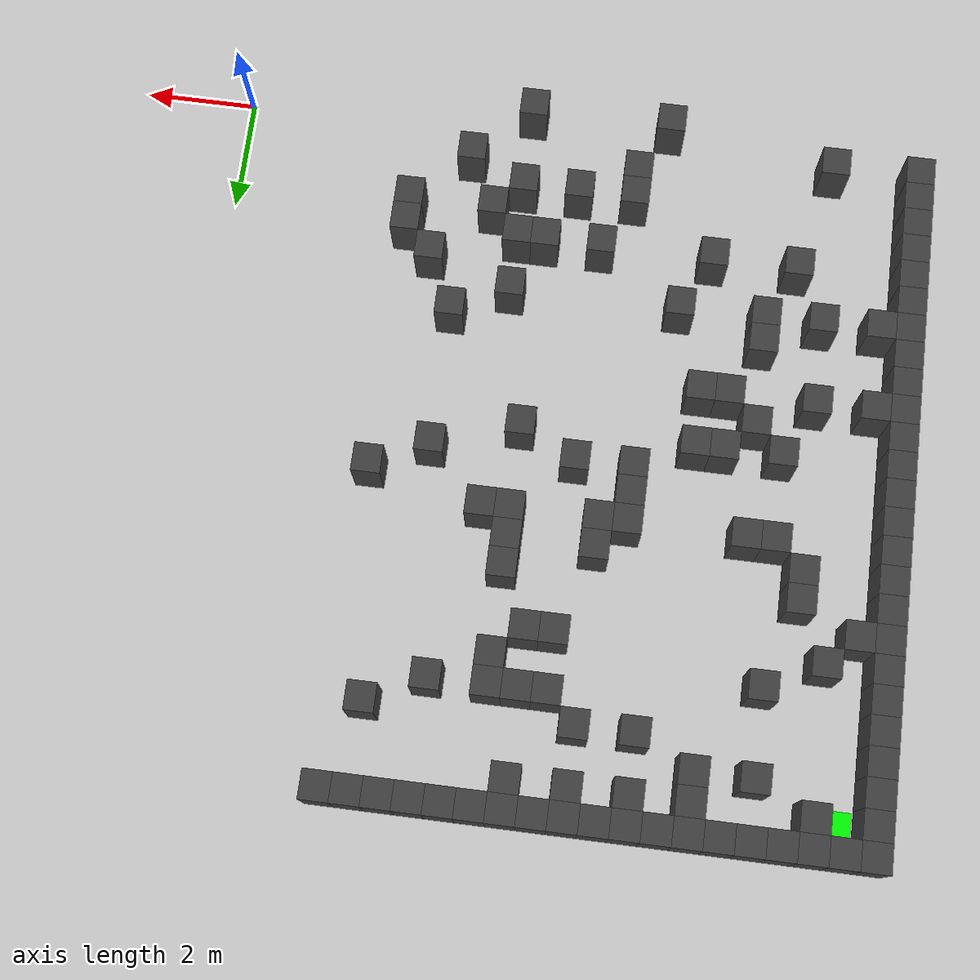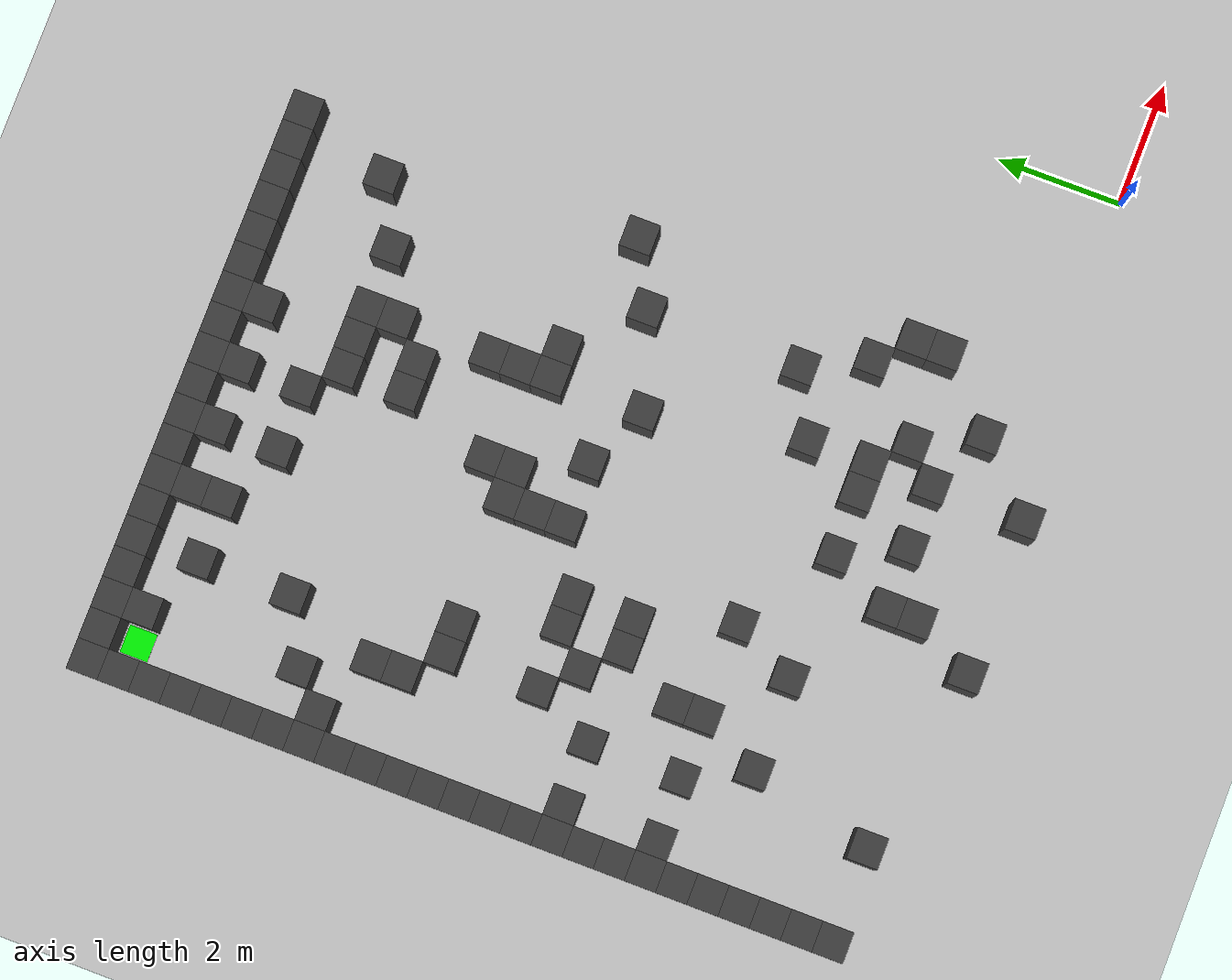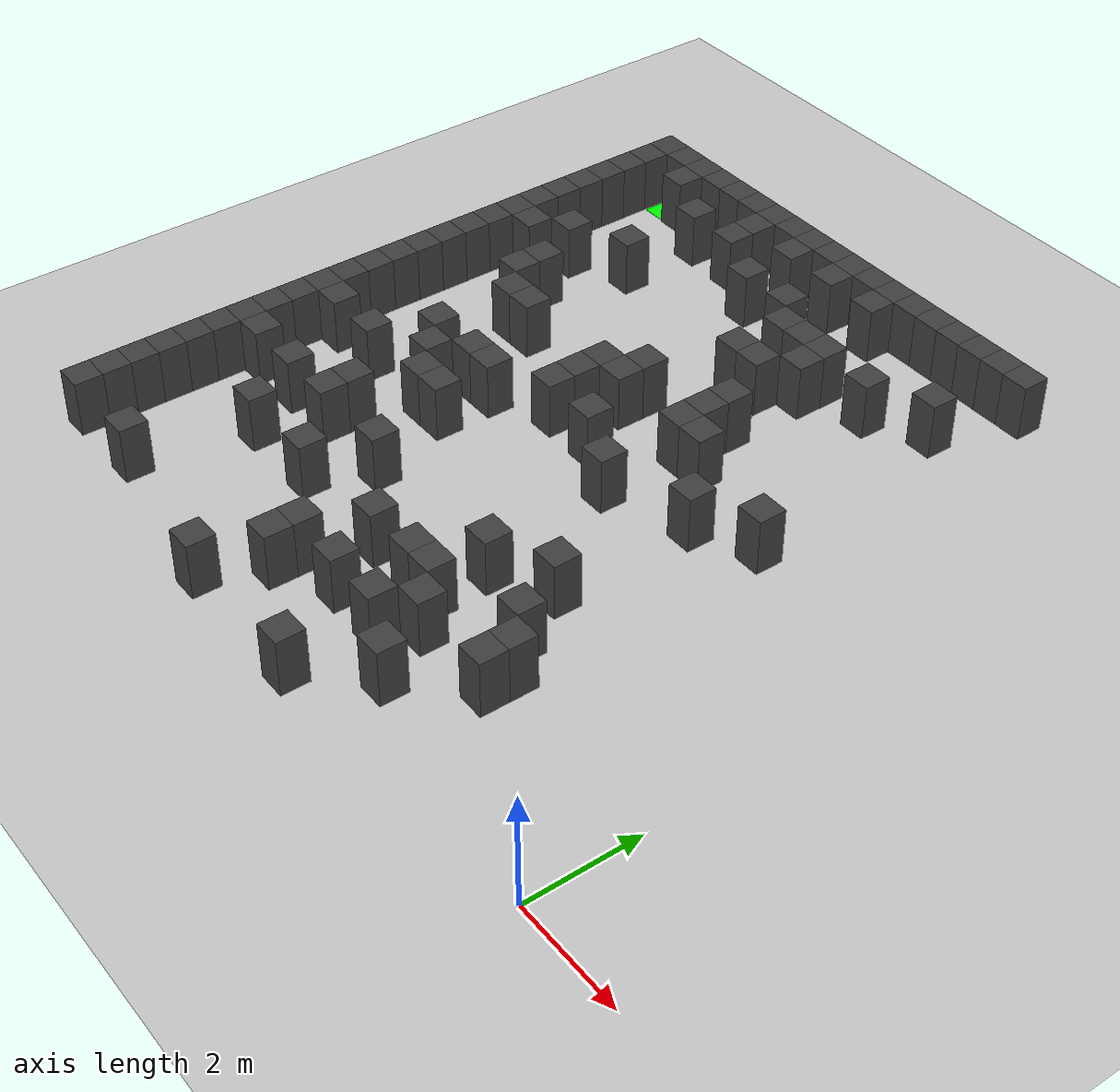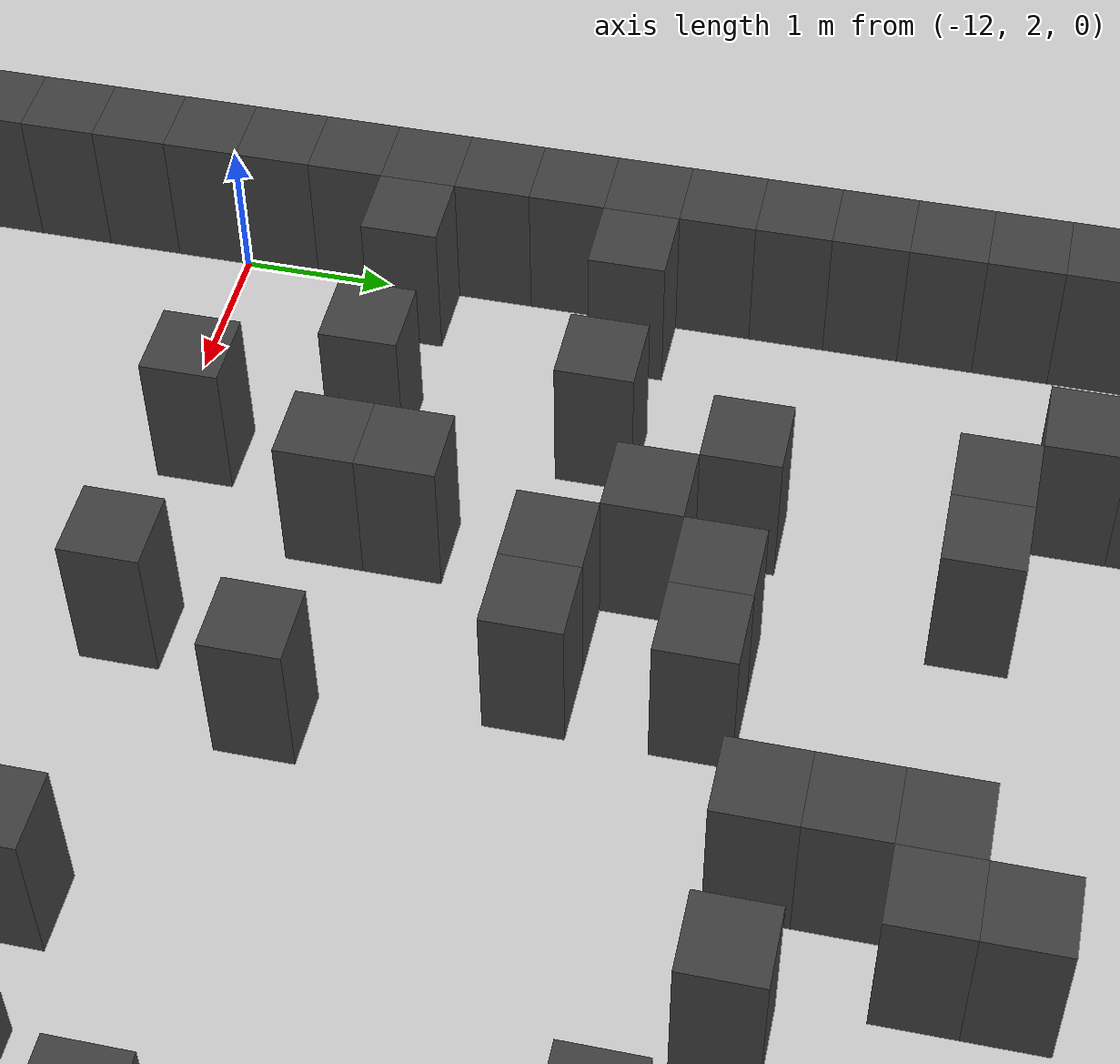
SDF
<sdf version="1.7">
 <world name="map_3158">
  <model name="ground_plane">
   <static>true</static>
   <link name="link">
    <collision name="collision">
     <geometry><plane><normal>0 0 1</normal><size>200 200</size></plane></geometry>
    </collision>
    <visual name="visual">
     <geometry><plane><normal>0 0 1</normal><size>200 200</size></plane></geometry>
     <material><ambient>0.8 0.8 0.8 1</ambient><diffuse>0.8 0.8 0.8 1</diffuse></material>
    </visual>
   </link>
  </model>
  <model name="maze_environment">
   <static>true</static>
   <link name="wall_0">
    <pose>-12.250 12.250 0.500 0 0 0</pose>
    <collision name="col"><geometry><box><size>0.5 0.5 1.0</size></box></geometry></collision>
    <visual name="vis">
     <geometry><box><size>0.5 0.5 1.0</size></box></geometry>
     <material><ambient>0.15 0.15 0.15 1</ambient><diffuse>0.25 0.25 0.25 1</diffuse></material>
    </visual>
   </link>
   <link name="wall_1">
    <pose>-11.750 12.250 0.500 0 0 0</pose>
    <collision name="col"><geometry><box><size>0.5 0.5 1.0</size></box></geometry></collision>
    <visual name="vis">
     <geometry><box><size>0.5 0.5 1.0</size></box></geometry>
     <material><ambient>0.15 0.15 0.15 1</ambient><diffuse>0.25 0.25 0.25 1</diffuse></material>
    </visual>
   </link>
   <link name="wall_2">
    <pose>-11.250 12.250 0.500 0 0 0</pose>
    <collision name="col"><geometry><box><size>0.5 0.5 1.0</size></box></geometry></collision>
    <visual name="vis">
     <geometry><box><size>0.5 0.5 1.0</size></box></geometry>
     <material><ambient>0.15 0.15 0.15 1</ambient><diffuse>0.25 0.25 0.25 1</diffuse></material>
    </visual>
   </link>
   <link name="wall_3">
    <pose>-10.750 12.250 0.500 0 0 0</pose>
    <collision name="col"><geometry><box><size>0.5 0.5 1.0</size></box></geometry></collision>
    <visual name="vis">
     <geometry><box><size>0.5 0.5 1.0</size></box></geometry>
     <material><ambient>0.15 0.15 0.15 1</ambient><diffuse>0.25 0.25 0.25 1</diffuse></material>
    </visual>
   </link>
   <link name="wall_4">
    <pose>-10.250 12.250 0.500 0 0 0</pose>
    <collision name="col"><geometry><box><size>0.5 0.5 1.0</size></box></geometry></collision>
    <visual name="vis">
     <geometry><box><size>0.5 0.5 1.0</size></box></geometry>
     <material><ambient>0.15 0.15 0.15 1</ambient><diffuse>0.25 0.25 0.25 1</diffuse></material>
    </visual>
   </link>
   <link name="wall_5">
    <pose>-9.750 12.250 0.500 0 0 0</pose>
    <collision name="col"><geometry><box><size>0.5 0.5 1.0</size></box></geometry></collision>
    <visual name="vis">
     <geometry><box><size>0.5 0.5 1.0</size></box></geometry>
     <material><ambient>0.15 0.15 0.15 1</ambient><diffuse>0.25 0.25 0.25 1</diffuse></material>
    </visual>
   </link>
   <link name="wall_6">
    <pose>-9.250 12.250 0.500 0 0 0</pose>
    <collision name="col"><geometry><box><size>0.5 0.5 1.0</size></box></geometry></collision>
    <visual name="vis">
     <geometry><box><size>0.5 0.5 1.0</size></box></geometry>
     <material><ambient>0.15 0.15 0.15 1</ambient><diffuse>0.25 0.25 0.25 1</diffuse></material>
    </visual>
   </link>
   <link name="wall_7">
    <pose>-8.750 12.250 0.500 0 0 0</pose>
    <collision name="col"><geometry><box><size>0.5 0.5 1.0</size></box></geometry></collision>
    <visual name="vis">
     <geometry><box><size>0.5 0.5 1.0</size></box></geometry>
     <material><ambient>0.15 0.15 0.15 1</ambient><diffuse>0.25 0.25 0.25 1</diffuse></material>
    </visual>
   </link>
   <link name="wall_8">
    <pose>-8.250 12.250 0.500 0 0 0</pose>
    <collision name="col"><geometry><box><size>0.5 0.5 1.0</size></box></geometry></collision>
    <visual name="vis">
     <geometry><box><size>0.5 0.5 1.0</size></box></geometry>
     <material><ambient>0.15 0.15 0.15 1</ambient><diffuse>0.25 0.25 0.25 1</diffuse></material>
    </visual>
   </link>
   <link name="wall_9">
    <pose>-7.750 12.250 0.500 0 0 0</pose>
    <collision name="col"><geometry><box><size>0.5 0.5 1.0</size></box></geometry></collision>
    <visual name="vis">
     <geometry><box><size>0.5 0.5 1.0</size></box></geometry>
     <material><ambient>0.15 0.15 0.15 1</ambient><diffuse>0.25 0.25 0.25 1</diffuse></material>
    </visual>
   </link>
   <link name="wall_10">
    <pose>-7.250 12.250 0.500 0 0 0</pose>
    <collision name="col"><geometry><box><size>0.5 0.5 1.0</size></box></geometry></collision>
    <visual name="vis">
     <geometry><box><size>0.5 0.5 1.0</size></box></geometry>
     <material><ambient>0.15 0.15 0.15 1</ambient><diffuse>0.25 0.25 0.25 1</diffuse></material>
    </visual>
   </link>
   <link name="wall_11">
    <pose>-6.750 12.250 0.500 0 0 0</pose>
    <collision name="col"><geometry><box><size>0.5 0.5 1.0</size></box></geometry></collision>
    <visual name="vis">
     <geometry><box><size>0.5 0.5 1.0</size></box></geometry>
     <material><ambient>0.15 0.15 0.15 1</ambient><diffuse>0.25 0.25 0.25 1</diffuse></material>
    </visual>
   </link>
   <link name="wall_12">
    <pose>-6.250 12.250 0.500 0 0 0</pose>
    <collision name="col"><geometry><box><size>0.5 0.5 1.0</size></box></geometry></collision>
    <visual name="vis">
     <geometry><box><size>0.5 0.5 1.0</size></box></geometry>
     <material><ambient>0.15 0.15 0.15 1</ambient><diffuse>0.25 0.25 0.25 1</diffuse></material>
    </visual>
   </link>
   <link name="wall_13">
    <pose>-5.750 12.250 0.500 0 0 0</pose>
    <collision name="col"><geometry><box><size>0.5 0.5 1.0</size></box></geometry></collision>
    <visual name="vis">
     <geometry><box><size>0.5 0.5 1.0</size></box></geometry>
     <material><ambient>0.15 0.15 0.15 1</ambient><diffuse>0.25 0.25 0.25 1</diffuse></material>
    </visual>
   </link>
   <link name="wall_14">
    <pose>-5.250 12.250 0.500 0 0 0</pose>
    <collision name="col"><geometry><box><size>0.5 0.5 1.0</size></box></geometry></collision>
    <visual name="vis">
     <geometry><box><size>0.5 0.5 1.0</size></box></geometry>
     <material><ambient>0.15 0.15 0.15 1</ambient><diffuse>0.25 0.25 0.25 1</diffuse></material>
    </visual>
   </link>
   <link name="wall_15">
    <pose>-4.750 12.250 0.500 0 0 0</pose>
    <collision name="col"><geometry><box><size>0.5 0.5 1.0</size></box></geometry></collision>
    <visual name="vis">
     <geometry><box><size>0.5 0.5 1.0</size></box></geometry>
     <material><ambient>0.15 0.15 0.15 1</ambient><diffuse>0.25 0.25 0.25 1</diffuse></material>
    </visual>
   </link>
   <link name="wall_16">
    <pose>-4.250 12.250 0.500 0 0 0</pose>
    <collision name="col"><geometry><box><size>0.5 0.5 1.0</size></box></geometry></collision>
    <visual name="vis">
     <geometry><box><size>0.5 0.5 1.0</size></box></geometry>
     <material><ambient>0.15 0.15 0.15 1</ambient><diffuse>0.25 0.25 0.25 1</diffuse></material>
    </visual>
   </link>
   <link name="wall_17">
    <pose>-3.750 12.250 0.500 0 0 0</pose>
    <collision name="col"><geometry><box><size>0.5 0.5 1.0</size></box></geometry></collision>
    <visual name="vis">
     <geometry><box><size>0.5 0.5 1.0</size></box></geometry>
     <material><ambient>0.15 0.15 0.15 1</ambient><diffuse>0.25 0.25 0.25 1</diffuse></material>
    </visual>
   </link>
   <link name="wall_18">
    <pose>-3.250 12.250 0.500 0 0 0</pose>
    <collision name="col"><geometry><box><size>0.5 0.5 1.0</size></box></geometry></collision>
    <visual name="vis">
     <geometry><box><size>0.5 0.5 1.0</size></box></geometry>
     <material><ambient>0.15 0.15 0.15 1</ambient><diffuse>0.25 0.25 0.25 1</diffuse></material>
    </visual>
   </link>
   <link name="wall_50">
    <pose>-12.250 11.750 0.500 0 0 0</pose>
    <collision name="col"><geometry><box><size>0.5 0.5 1.0</size></box></geometry></collision>
    <visual name="vis">
     <geometry><box><size>0.5 0.5 1.0</size></box></geometry>
     <material><ambient>0.15 0.15 0.15 1</ambient><diffuse>0.25 0.25 0.25 1</diffuse></material>
    </visual>
   </link>
   <link name="wall_51">
    <pose>-11.250 11.750 0.500 0 0 0</pose>
    <collision name="col"><geometry><box><size>0.5 0.5 1.0</size></box></geometry></collision>
    <visual name="vis">
     <geometry><box><size>0.5 0.5 1.0</size></box></geometry>
     <material><ambient>0.15 0.15 0.15 1</ambient><diffuse>0.25 0.25 0.25 1</diffuse></material>
    </visual>
   </link>
   <link name="wall_52">
    <pose>-9.250 11.750 0.500 0 0 0</pose>
    <collision name="col"><geometry><box><size>0.5 0.5 1.0</size></box></geometry></collision>
    <visual name="vis">
     <geometry><box><size>0.5 0.5 1.0</size></box></geometry>
     <material><ambient>0.15 0.15 0.15 1</ambient><diffuse>0.25 0.25 0.25 1</diffuse></material>
    </visual>
   </link>
   <link name="wall_53">
    <pose>-8.250 11.750 0.500 0 0 0</pose>
    <collision name="col"><geometry><box><size>0.5 0.5 1.0</size></box></geometry></collision>
    <visual name="vis">
     <geometry><box><size>0.5 0.5 1.0</size></box></geometry>
     <material><ambient>0.15 0.15 0.15 1</ambient><diffuse>0.25 0.25 0.25 1</diffuse></material>
    </visual>
   </link>
   <link name="wall_54">
    <pose>-7.250 11.750 0.500 0 0 0</pose>
    <collision name="col"><geometry><box><size>0.5 0.5 1.0</size></box></geometry></collision>
    <visual name="vis">
     <geometry><box><size>0.5 0.5 1.0</size></box></geometry>
     <material><ambient>0.15 0.15 0.15 1</ambient><diffuse>0.25 0.25 0.25 1</diffuse></material>
    </visual>
   </link>
   <link name="wall_55">
    <pose>-6.250 11.750 0.500 0 0 0</pose>
    <collision name="col"><geometry><box><size>0.5 0.5 1.0</size></box></geometry></collision>
    <visual name="vis">
     <geometry><box><size>0.5 0.5 1.0</size></box></geometry>
     <material><ambient>0.15 0.15 0.15 1</ambient><diffuse>0.25 0.25 0.25 1</diffuse></material>
    </visual>
   </link>
   <link name="wall_61">
    <pose>-12.250 11.250 0.500 0 0 0</pose>
    <collision name="col"><geometry><box><size>0.5 0.5 1.0</size></box></geometry></collision>
    <visual name="vis">
     <geometry><box><size>0.5 0.5 1.0</size></box></geometry>
     <material><ambient>0.15 0.15 0.15 1</ambient><diffuse>0.25 0.25 0.25 1</diffuse></material>
    </visual>
   </link>
   <link name="wall_62">
    <pose>-10.250 11.250 0.500 0 0 0</pose>
    <collision name="col"><geometry><box><size>0.5 0.5 1.0</size></box></geometry></collision>
    <visual name="vis">
     <geometry><box><size>0.5 0.5 1.0</size></box></geometry>
     <material><ambient>0.15 0.15 0.15 1</ambient><diffuse>0.25 0.25 0.25 1</diffuse></material>
    </visual>
   </link>
   <link name="wall_63">
    <pose>-9.250 11.250 0.500 0 0 0</pose>
    <collision name="col"><geometry><box><size>0.5 0.5 1.0</size></box></geometry></collision>
    <visual name="vis">
     <geometry><box><size>0.5 0.5 1.0</size></box></geometry>
     <material><ambient>0.15 0.15 0.15 1</ambient><diffuse>0.25 0.25 0.25 1</diffuse></material>
    </visual>
   </link>
   <link name="wall_69">
    <pose>-12.250 10.750 0.500 0 0 0</pose>
    <collision name="col"><geometry><box><size>0.5 0.5 1.0</size></box></geometry></collision>
    <visual name="vis">
     <geometry><box><size>0.5 0.5 1.0</size></box></geometry>
     <material><ambient>0.15 0.15 0.15 1</ambient><diffuse>0.25 0.25 0.25 1</diffuse></material>
    </visual>
   </link>
   <link name="wall_70">
    <pose>-8.250 10.750 0.500 0 0 0</pose>
    <collision name="col"><geometry><box><size>0.5 0.5 1.0</size></box></geometry></collision>
    <visual name="vis">
     <geometry><box><size>0.5 0.5 1.0</size></box></geometry>
     <material><ambient>0.15 0.15 0.15 1</ambient><diffuse>0.25 0.25 0.25 1</diffuse></material>
    </visual>
   </link>
   <link name="wall_71">
    <pose>-7.250 10.750 0.500 0 0 0</pose>
    <collision name="col"><geometry><box><size>0.5 0.5 1.0</size></box></geometry></collision>
    <visual name="vis">
     <geometry><box><size>0.5 0.5 1.0</size></box></geometry>
     <material><ambient>0.15 0.15 0.15 1</ambient><diffuse>0.25 0.25 0.25 1</diffuse></material>
    </visual>
   </link>
   <link name="wall_72">
    <pose>-3.750 10.750 0.500 0 0 0</pose>
    <collision name="col"><geometry><box><size>0.5 0.5 1.0</size></box></geometry></collision>
    <visual name="vis">
     <geometry><box><size>0.5 0.5 1.0</size></box></geometry>
     <material><ambient>0.15 0.15 0.15 1</ambient><diffuse>0.25 0.25 0.25 1</diffuse></material>
    </visual>
   </link>
   <link name="wall_79">
    <pose>-12.250 10.250 0.500 0 0 0</pose>
    <collision name="col"><geometry><box><size>0.5 0.5 1.0</size></box></geometry></collision>
    <visual name="vis">
     <geometry><box><size>0.5 0.5 1.0</size></box></geometry>
     <material><ambient>0.15 0.15 0.15 1</ambient><diffuse>0.25 0.25 0.25 1</diffuse></material>
    </visual>
   </link>
   <link name="wall_80">
    <pose>-6.750 10.250 0.500 0 0 0</pose>
    <collision name="col"><geometry><box><size>0.5 0.5 1.0</size></box></geometry></collision>
    <visual name="vis">
     <geometry><box><size>0.5 0.5 1.0</size></box></geometry>
     <material><ambient>0.15 0.15 0.15 1</ambient><diffuse>0.25 0.25 0.25 1</diffuse></material>
    </visual>
   </link>
   <link name="wall_81">
    <pose>-6.250 10.250 0.500 0 0 0</pose>
    <collision name="col"><geometry><box><size>0.5 0.5 1.0</size></box></geometry></collision>
    <visual name="vis">
     <geometry><box><size>0.5 0.5 1.0</size></box></geometry>
     <material><ambient>0.15 0.15 0.15 1</ambient><diffuse>0.25 0.25 0.25 1</diffuse></material>
    </visual>
   </link>
   <link name="wall_82">
    <pose>-5.750 10.250 0.500 0 0 0</pose>
    <collision name="col"><geometry><box><size>0.5 0.5 1.0</size></box></geometry></collision>
    <visual name="vis">
     <geometry><box><size>0.5 0.5 1.0</size></box></geometry>
     <material><ambient>0.15 0.15 0.15 1</ambient><diffuse>0.25 0.25 0.25 1</diffuse></material>
    </visual>
   </link>
   <link name="wall_83">
    <pose>-4.750 10.250 0.500 0 0 0</pose>
    <collision name="col"><geometry><box><size>0.5 0.5 1.0</size></box></geometry></collision>
    <visual name="vis">
     <geometry><box><size>0.5 0.5 1.0</size></box></geometry>
     <material><ambient>0.15 0.15 0.15 1</ambient><diffuse>0.25 0.25 0.25 1</diffuse></material>
    </visual>
   </link>
   <link name="wall_91">
    <pose>-12.250 9.750 0.500 0 0 0</pose>
    <collision name="col"><geometry><box><size>0.5 0.5 1.0</size></box></geometry></collision>
    <visual name="vis">
     <geometry><box><size>0.5 0.5 1.0</size></box></geometry>
     <material><ambient>0.15 0.15 0.15 1</ambient><diffuse>0.25 0.25 0.25 1</diffuse></material>
    </visual>
   </link>
   <link name="wall_92">
    <pose>-10.250 9.750 0.500 0 0 0</pose>
    <collision name="col"><geometry><box><size>0.5 0.5 1.0</size></box></geometry></collision>
    <visual name="vis">
     <geometry><box><size>0.5 0.5 1.0</size></box></geometry>
     <material><ambient>0.15 0.15 0.15 1</ambient><diffuse>0.25 0.25 0.25 1</diffuse></material>
    </visual>
   </link>
   <link name="wall_93">
    <pose>-5.750 9.750 0.500 0 0 0</pose>
    <collision name="col"><geometry><box><size>0.5 0.5 1.0</size></box></geometry></collision>
    <visual name="vis">
     <geometry><box><size>0.5 0.5 1.0</size></box></geometry>
     <material><ambient>0.15 0.15 0.15 1</ambient><diffuse>0.25 0.25 0.25 1</diffuse></material>
    </visual>
   </link>
   <link name="wall_99">
    <pose>-12.250 9.250 0.500 0 0 0</pose>
    <collision name="col"><geometry><box><size>0.5 0.5 1.0</size></box></geometry></collision>
    <visual name="vis">
     <geometry><box><size>0.5 0.5 1.0</size></box></geometry>
     <material><ambient>0.15 0.15 0.15 1</ambient><diffuse>0.25 0.25 0.25 1</diffuse></material>
    </visual>
   </link>
   <link name="wall_100">
    <pose>-11.250 9.250 0.500 0 0 0</pose>
    <collision name="col"><geometry><box><size>0.5 0.5 1.0</size></box></geometry></collision>
    <visual name="vis">
     <geometry><box><size>0.5 0.5 1.0</size></box></geometry>
     <material><ambient>0.15 0.15 0.15 1</ambient><diffuse>0.25 0.25 0.25 1</diffuse></material>
    </visual>
   </link>
   <link name="wall_101">
    <pose>-6.750 9.250 0.500 0 0 0</pose>
    <collision name="col"><geometry><box><size>0.5 0.5 1.0</size></box></geometry></collision>
    <visual name="vis">
     <geometry><box><size>0.5 0.5 1.0</size></box></geometry>
     <material><ambient>0.15 0.15 0.15 1</ambient><diffuse>0.25 0.25 0.25 1</diffuse></material>
    </visual>
   </link>
   <link name="wall_102">
    <pose>-6.250 9.250 0.500 0 0 0</pose>
    <collision name="col"><geometry><box><size>0.5 0.5 1.0</size></box></geometry></collision>
    <visual name="vis">
     <geometry><box><size>0.5 0.5 1.0</size></box></geometry>
     <material><ambient>0.15 0.15 0.15 1</ambient><diffuse>0.25 0.25 0.25 1</diffuse></material>
    </visual>
   </link>
   <link name="wall_110">
    <pose>-12.250 8.750 0.500 0 0 0</pose>
    <collision name="col"><geometry><box><size>0.5 0.5 1.0</size></box></geometry></collision>
    <visual name="vis">
     <geometry><box><size>0.5 0.5 1.0</size></box></geometry>
     <material><ambient>0.15 0.15 0.15 1</ambient><diffuse>0.25 0.25 0.25 1</diffuse></material>
    </visual>
   </link>
   <link name="wall_111">
    <pose>-11.750 8.750 0.500 0 0 0</pose>
    <collision name="col"><geometry><box><size>0.5 0.5 1.0</size></box></geometry></collision>
    <visual name="vis">
     <geometry><box><size>0.5 0.5 1.0</size></box></geometry>
     <material><ambient>0.15 0.15 0.15 1</ambient><diffuse>0.25 0.25 0.25 1</diffuse></material>
    </visual>
   </link>
   <link name="wall_118">
    <pose>-12.250 8.250 0.500 0 0 0</pose>
    <collision name="col"><geometry><box><size>0.5 0.5 1.0</size></box></geometry></collision>
    <visual name="vis">
     <geometry><box><size>0.5 0.5 1.0</size></box></geometry>
     <material><ambient>0.15 0.15 0.15 1</ambient><diffuse>0.25 0.25 0.25 1</diffuse></material>
    </visual>
   </link>
   <link name="wall_119">
    <pose>-10.750 8.250 0.500 0 0 0</pose>
    <collision name="col"><geometry><box><size>0.5 0.5 1.0</size></box></geometry></collision>
    <visual name="vis">
     <geometry><box><size>0.5 0.5 1.0</size></box></geometry>
     <material><ambient>0.15 0.15 0.15 1</ambient><diffuse>0.25 0.25 0.25 1</diffuse></material>
    </visual>
   </link>
   <link name="wall_120">
    <pose>-5.750 8.250 0.500 0 0 0</pose>
    <collision name="col"><geometry><box><size>0.5 0.5 1.0</size></box></geometry></collision>
    <visual name="vis">
     <geometry><box><size>0.5 0.5 1.0</size></box></geometry>
     <material><ambient>0.15 0.15 0.15 1</ambient><diffuse>0.25 0.25 0.25 1</diffuse></material>
    </visual>
   </link>
   <link name="wall_129">
    <pose>-12.250 7.750 0.500 0 0 0</pose>
    <collision name="col"><geometry><box><size>0.5 0.5 1.0</size></box></geometry></collision>
    <visual name="vis">
     <geometry><box><size>0.5 0.5 1.0</size></box></geometry>
     <material><ambient>0.15 0.15 0.15 1</ambient><diffuse>0.25 0.25 0.25 1</diffuse></material>
    </visual>
   </link>
   <link name="wall_130">
    <pose>-10.750 7.750 0.500 0 0 0</pose>
    <collision name="col"><geometry><box><size>0.5 0.5 1.0</size></box></geometry></collision>
    <visual name="vis">
     <geometry><box><size>0.5 0.5 1.0</size></box></geometry>
     <material><ambient>0.15 0.15 0.15 1</ambient><diffuse>0.25 0.25 0.25 1</diffuse></material>
    </visual>
   </link>
   <link name="wall_131">
    <pose>-7.250 7.750 0.500 0 0 0</pose>
    <collision name="col"><geometry><box><size>0.5 0.5 1.0</size></box></geometry></collision>
    <visual name="vis">
     <geometry><box><size>0.5 0.5 1.0</size></box></geometry>
     <material><ambient>0.15 0.15 0.15 1</ambient><diffuse>0.25 0.25 0.25 1</diffuse></material>
    </visual>
   </link>
   <link name="wall_132">
    <pose>-5.750 7.750 0.500 0 0 0</pose>
    <collision name="col"><geometry><box><size>0.5 0.5 1.0</size></box></geometry></collision>
    <visual name="vis">
     <geometry><box><size>0.5 0.5 1.0</size></box></geometry>
     <material><ambient>0.15 0.15 0.15 1</ambient><diffuse>0.25 0.25 0.25 1</diffuse></material>
    </visual>
   </link>
   <link name="wall_137">
    <pose>-12.250 7.250 0.500 0 0 0</pose>
    <collision name="col"><geometry><box><size>0.5 0.5 1.0</size></box></geometry></collision>
    <visual name="vis">
     <geometry><box><size>0.5 0.5 1.0</size></box></geometry>
     <material><ambient>0.15 0.15 0.15 1</ambient><diffuse>0.25 0.25 0.25 1</diffuse></material>
    </visual>
   </link>
   <link name="wall_138">
    <pose>-10.250 7.250 0.500 0 0 0</pose>
    <collision name="col"><geometry><box><size>0.5 0.5 1.0</size></box></geometry></collision>
    <visual name="vis">
     <geometry><box><size>0.5 0.5 1.0</size></box></geometry>
     <material><ambient>0.15 0.15 0.15 1</ambient><diffuse>0.25 0.25 0.25 1</diffuse></material>
    </visual>
   </link>
   <link name="wall_139">
    <pose>-9.750 7.250 0.500 0 0 0</pose>
    <collision name="col"><geometry><box><size>0.5 0.5 1.0</size></box></geometry></collision>
    <visual name="vis">
     <geometry><box><size>0.5 0.5 1.0</size></box></geometry>
     <material><ambient>0.15 0.15 0.15 1</ambient><diffuse>0.25 0.25 0.25 1</diffuse></material>
    </visual>
   </link>
   <link name="wall_140">
    <pose>-7.750 7.250 0.500 0 0 0</pose>
    <collision name="col"><geometry><box><size>0.5 0.5 1.0</size></box></geometry></collision>
    <visual name="vis">
     <geometry><box><size>0.5 0.5 1.0</size></box></geometry>
     <material><ambient>0.15 0.15 0.15 1</ambient><diffuse>0.25 0.25 0.25 1</diffuse></material>
    </visual>
   </link>
   <link name="wall_141">
    <pose>-7.250 7.250 0.500 0 0 0</pose>
    <collision name="col"><geometry><box><size>0.5 0.5 1.0</size></box></geometry></collision>
    <visual name="vis">
     <geometry><box><size>0.5 0.5 1.0</size></box></geometry>
     <material><ambient>0.15 0.15 0.15 1</ambient><diffuse>0.25 0.25 0.25 1</diffuse></material>
    </visual>
   </link>
   <link name="wall_142">
    <pose>-5.750 7.250 0.500 0 0 0</pose>
    <collision name="col"><geometry><box><size>0.5 0.5 1.0</size></box></geometry></collision>
    <visual name="vis">
     <geometry><box><size>0.5 0.5 1.0</size></box></geometry>
     <material><ambient>0.15 0.15 0.15 1</ambient><diffuse>0.25 0.25 0.25 1</diffuse></material>
    </visual>
   </link>
   <link name="wall_143">
    <pose>-5.250 7.250 0.500 0 0 0</pose>
    <collision name="col"><geometry><box><size>0.5 0.5 1.0</size></box></geometry></collision>
    <visual name="vis">
     <geometry><box><size>0.5 0.5 1.0</size></box></geometry>
     <material><ambient>0.15 0.15 0.15 1</ambient><diffuse>0.25 0.25 0.25 1</diffuse></material>
    </visual>
   </link>
   <link name="wall_148">
    <pose>-12.250 6.750 0.500 0 0 0</pose>
    <collision name="col"><geometry><box><size>0.5 0.5 1.0</size></box></geometry></collision>
    <visual name="vis">
     <geometry><box><size>0.5 0.5 1.0</size></box></geometry>
     <material><ambient>0.15 0.15 0.15 1</ambient><diffuse>0.25 0.25 0.25 1</diffuse></material>
    </visual>
   </link>
   <link name="wall_149">
    <pose>-7.750 6.750 0.500 0 0 0</pose>
    <collision name="col"><geometry><box><size>0.5 0.5 1.0</size></box></geometry></collision>
    <visual name="vis">
     <geometry><box><size>0.5 0.5 1.0</size></box></geometry>
     <material><ambient>0.15 0.15 0.15 1</ambient><diffuse>0.25 0.25 0.25 1</diffuse></material>
    </visual>
   </link>
   <link name="wall_150">
    <pose>-3.250 6.750 0.500 0 0 0</pose>
    <collision name="col"><geometry><box><size>0.5 0.5 1.0</size></box></geometry></collision>
    <visual name="vis">
     <geometry><box><size>0.5 0.5 1.0</size></box></geometry>
     <material><ambient>0.15 0.15 0.15 1</ambient><diffuse>0.25 0.25 0.25 1</diffuse></material>
    </visual>
   </link>
   <link name="wall_154">
    <pose>-12.250 6.250 0.500 0 0 0</pose>
    <collision name="col"><geometry><box><size>0.5 0.5 1.0</size></box></geometry></collision>
    <visual name="vis">
     <geometry><box><size>0.5 0.5 1.0</size></box></geometry>
     <material><ambient>0.15 0.15 0.15 1</ambient><diffuse>0.25 0.25 0.25 1</diffuse></material>
    </visual>
   </link>
   <link name="wall_155">
    <pose>-7.750 6.250 0.500 0 0 0</pose>
    <collision name="col"><geometry><box><size>0.5 0.5 1.0</size></box></geometry></collision>
    <visual name="vis">
     <geometry><box><size>0.5 0.5 1.0</size></box></geometry>
     <material><ambient>0.15 0.15 0.15 1</ambient><diffuse>0.25 0.25 0.25 1</diffuse></material>
    </visual>
   </link>
   <link name="wall_156">
    <pose>-6.750 6.250 0.500 0 0 0</pose>
    <collision name="col"><geometry><box><size>0.5 0.5 1.0</size></box></geometry></collision>
    <visual name="vis">
     <geometry><box><size>0.5 0.5 1.0</size></box></geometry>
     <material><ambient>0.15 0.15 0.15 1</ambient><diffuse>0.25 0.25 0.25 1</diffuse></material>
    </visual>
   </link>
   <link name="wall_157">
    <pose>-4.250 6.250 0.500 0 0 0</pose>
    <collision name="col"><geometry><box><size>0.5 0.5 1.0</size></box></geometry></collision>
    <visual name="vis">
     <geometry><box><size>0.5 0.5 1.0</size></box></geometry>
     <material><ambient>0.15 0.15 0.15 1</ambient><diffuse>0.25 0.25 0.25 1</diffuse></material>
    </visual>
   </link>
   <link name="wall_164">
    <pose>-12.250 5.750 0.500 0 0 0</pose>
    <collision name="col"><geometry><box><size>0.5 0.5 1.0</size></box></geometry></collision>
    <visual name="vis">
     <geometry><box><size>0.5 0.5 1.0</size></box></geometry>
     <material><ambient>0.15 0.15 0.15 1</ambient><diffuse>0.25 0.25 0.25 1</diffuse></material>
    </visual>
   </link>
   <link name="wall_165">
    <pose>-10.250 5.750 0.500 0 0 0</pose>
    <collision name="col"><geometry><box><size>0.5 0.5 1.0</size></box></geometry></collision>
    <visual name="vis">
     <geometry><box><size>0.5 0.5 1.0</size></box></geometry>
     <material><ambient>0.15 0.15 0.15 1</ambient><diffuse>0.25 0.25 0.25 1</diffuse></material>
    </visual>
   </link>
   <link name="wall_166">
    <pose>-9.250 5.750 0.500 0 0 0</pose>
    <collision name="col"><geometry><box><size>0.5 0.5 1.0</size></box></geometry></collision>
    <visual name="vis">
     <geometry><box><size>0.5 0.5 1.0</size></box></geometry>
     <material><ambient>0.15 0.15 0.15 1</ambient><diffuse>0.25 0.25 0.25 1</diffuse></material>
    </visual>
   </link>
   <link name="wall_167">
    <pose>-8.750 5.750 0.500 0 0 0</pose>
    <collision name="col"><geometry><box><size>0.5 0.5 1.0</size></box></geometry></collision>
    <visual name="vis">
     <geometry><box><size>0.5 0.5 1.0</size></box></geometry>
     <material><ambient>0.15 0.15 0.15 1</ambient><diffuse>0.25 0.25 0.25 1</diffuse></material>
    </visual>
   </link>
   <link name="wall_168">
    <pose>-5.750 5.750 0.500 0 0 0</pose>
    <collision name="col"><geometry><box><size>0.5 0.5 1.0</size></box></geometry></collision>
    <visual name="vis">
     <geometry><box><size>0.5 0.5 1.0</size></box></geometry>
     <material><ambient>0.15 0.15 0.15 1</ambient><diffuse>0.25 0.25 0.25 1</diffuse></material>
    </visual>
   </link>
   <link name="wall_176">
    <pose>-12.250 5.250 0.500 0 0 0</pose>
    <collision name="col"><geometry><box><size>0.5 0.5 1.0</size></box></geometry></collision>
    <visual name="vis">
     <geometry><box><size>0.5 0.5 1.0</size></box></geometry>
     <material><ambient>0.15 0.15 0.15 1</ambient><diffuse>0.25 0.25 0.25 1</diffuse></material>
    </visual>
   </link>
   <link name="wall_177">
    <pose>-9.750 5.250 0.500 0 0 0</pose>
    <collision name="col"><geometry><box><size>0.5 0.5 1.0</size></box></geometry></collision>
    <visual name="vis">
     <geometry><box><size>0.5 0.5 1.0</size></box></geometry>
     <material><ambient>0.15 0.15 0.15 1</ambient><diffuse>0.25 0.25 0.25 1</diffuse></material>
    </visual>
   </link>
   <link name="wall_182">
    <pose>-12.250 4.750 0.500 0 0 0</pose>
    <collision name="col"><geometry><box><size>0.5 0.5 1.0</size></box></geometry></collision>
    <visual name="vis">
     <geometry><box><size>0.5 0.5 1.0</size></box></geometry>
     <material><ambient>0.15 0.15 0.15 1</ambient><diffuse>0.25 0.25 0.25 1</diffuse></material>
    </visual>
   </link>
   <link name="wall_183">
    <pose>-11.750 4.750 0.500 0 0 0</pose>
    <collision name="col"><geometry><box><size>0.5 0.5 1.0</size></box></geometry></collision>
    <visual name="vis">
     <geometry><box><size>0.5 0.5 1.0</size></box></geometry>
     <material><ambient>0.15 0.15 0.15 1</ambient><diffuse>0.25 0.25 0.25 1</diffuse></material>
    </visual>
   </link>
   <link name="wall_184">
    <pose>-10.750 4.750 0.500 0 0 0</pose>
    <collision name="col"><geometry><box><size>0.5 0.5 1.0</size></box></geometry></collision>
    <visual name="vis">
     <geometry><box><size>0.5 0.5 1.0</size></box></geometry>
     <material><ambient>0.15 0.15 0.15 1</ambient><diffuse>0.25 0.25 0.25 1</diffuse></material>
    </visual>
   </link>
   <link name="wall_185">
    <pose>-9.250 4.750 0.500 0 0 0</pose>
    <collision name="col"><geometry><box><size>0.5 0.5 1.0</size></box></geometry></collision>
    <visual name="vis">
     <geometry><box><size>0.5 0.5 1.0</size></box></geometry>
     <material><ambient>0.15 0.15 0.15 1</ambient><diffuse>0.25 0.25 0.25 1</diffuse></material>
    </visual>
   </link>
   <link name="wall_186">
    <pose>-8.750 4.750 0.500 0 0 0</pose>
    <collision name="col"><geometry><box><size>0.5 0.5 1.0</size></box></geometry></collision>
    <visual name="vis">
     <geometry><box><size>0.5 0.5 1.0</size></box></geometry>
     <material><ambient>0.15 0.15 0.15 1</ambient><diffuse>0.25 0.25 0.25 1</diffuse></material>
    </visual>
   </link>
   <link name="wall_197">
    <pose>-12.250 4.250 0.500 0 0 0</pose>
    <collision name="col"><geometry><box><size>0.5 0.5 1.0</size></box></geometry></collision>
    <visual name="vis">
     <geometry><box><size>0.5 0.5 1.0</size></box></geometry>
     <material><ambient>0.15 0.15 0.15 1</ambient><diffuse>0.25 0.25 0.25 1</diffuse></material>
    </visual>
   </link>
   <link name="wall_203">
    <pose>-12.250 3.750 0.500 0 0 0</pose>
    <collision name="col"><geometry><box><size>0.5 0.5 1.0</size></box></geometry></collision>
    <visual name="vis">
     <geometry><box><size>0.5 0.5 1.0</size></box></geometry>
     <material><ambient>0.15 0.15 0.15 1</ambient><diffuse>0.25 0.25 0.25 1</diffuse></material>
    </visual>
   </link>
   <link name="wall_204">
    <pose>-9.750 3.750 0.500 0 0 0</pose>
    <collision name="col"><geometry><box><size>0.5 0.5 1.0</size></box></geometry></collision>
    <visual name="vis">
     <geometry><box><size>0.5 0.5 1.0</size></box></geometry>
     <material><ambient>0.15 0.15 0.15 1</ambient><diffuse>0.25 0.25 0.25 1</diffuse></material>
    </visual>
   </link>
   <link name="wall_205">
    <pose>-4.250 3.750 0.500 0 0 0</pose>
    <collision name="col"><geometry><box><size>0.5 0.5 1.0</size></box></geometry></collision>
    <visual name="vis">
     <geometry><box><size>0.5 0.5 1.0</size></box></geometry>
     <material><ambient>0.15 0.15 0.15 1</ambient><diffuse>0.25 0.25 0.25 1</diffuse></material>
    </visual>
   </link>
   <link name="wall_216">
    <pose>-12.250 3.250 0.500 0 0 0</pose>
    <collision name="col"><geometry><box><size>0.5 0.5 1.0</size></box></geometry></collision>
    <visual name="vis">
     <geometry><box><size>0.5 0.5 1.0</size></box></geometry>
     <material><ambient>0.15 0.15 0.15 1</ambient><diffuse>0.25 0.25 0.25 1</diffuse></material>
    </visual>
   </link>
   <link name="wall_217">
    <pose>-11.750 3.250 0.500 0 0 0</pose>
    <collision name="col"><geometry><box><size>0.5 0.5 1.0</size></box></geometry></collision>
    <visual name="vis">
     <geometry><box><size>0.5 0.5 1.0</size></box></geometry>
     <material><ambient>0.15 0.15 0.15 1</ambient><diffuse>0.25 0.25 0.25 1</diffuse></material>
    </visual>
   </link>
   <link name="wall_218">
    <pose>-10.750 3.250 0.500 0 0 0</pose>
    <collision name="col"><geometry><box><size>0.5 0.5 1.0</size></box></geometry></collision>
    <visual name="vis">
     <geometry><box><size>0.5 0.5 1.0</size></box></geometry>
     <material><ambient>0.15 0.15 0.15 1</ambient><diffuse>0.25 0.25 0.25 1</diffuse></material>
    </visual>
   </link>
   <link name="wall_219">
    <pose>-9.750 3.250 0.500 0 0 0</pose>
    <collision name="col"><geometry><box><size>0.5 0.5 1.0</size></box></geometry></collision>
    <visual name="vis">
     <geometry><box><size>0.5 0.5 1.0</size></box></geometry>
     <material><ambient>0.15 0.15 0.15 1</ambient><diffuse>0.25 0.25 0.25 1</diffuse></material>
    </visual>
   </link>
   <link name="wall_220">
    <pose>-8.250 3.250 0.500 0 0 0</pose>
    <collision name="col"><geometry><box><size>0.5 0.5 1.0</size></box></geometry></collision>
    <visual name="vis">
     <geometry><box><size>0.5 0.5 1.0</size></box></geometry>
     <material><ambient>0.15 0.15 0.15 1</ambient><diffuse>0.25 0.25 0.25 1</diffuse></material>
    </visual>
   </link>
   <link name="wall_221">
    <pose>-5.250 3.250 0.500 0 0 0</pose>
    <collision name="col"><geometry><box><size>0.5 0.5 1.0</size></box></geometry></collision>
    <visual name="vis">
     <geometry><box><size>0.5 0.5 1.0</size></box></geometry>
     <material><ambient>0.15 0.15 0.15 1</ambient><diffuse>0.25 0.25 0.25 1</diffuse></material>
    </visual>
   </link>
   <link name="wall_226">
    <pose>-12.250 2.750 0.500 0 0 0</pose>
    <collision name="col"><geometry><box><size>0.5 0.5 1.0</size></box></geometry></collision>
    <visual name="vis">
     <geometry><box><size>0.5 0.5 1.0</size></box></geometry>
     <material><ambient>0.15 0.15 0.15 1</ambient><diffuse>0.25 0.25 0.25 1</diffuse></material>
    </visual>
   </link>
   <link name="wall_227">
    <pose>-3.750 2.750 0.500 0 0 0</pose>
    <collision name="col"><geometry><box><size>0.5 0.5 1.0</size></box></geometry></collision>
    <visual name="vis">
     <geometry><box><size>0.5 0.5 1.0</size></box></geometry>
     <material><ambient>0.15 0.15 0.15 1</ambient><diffuse>0.25 0.25 0.25 1</diffuse></material>
    </visual>
   </link>
   <link name="wall_232">
    <pose>-12.250 2.250 0.500 0 0 0</pose>
    <collision name="col"><geometry><box><size>0.5 0.5 1.0</size></box></geometry></collision>
    <visual name="vis">
     <geometry><box><size>0.5 0.5 1.0</size></box></geometry>
     <material><ambient>0.15 0.15 0.15 1</ambient><diffuse>0.25 0.25 0.25 1</diffuse></material>
    </visual>
   </link>
   <link name="wall_233">
    <pose>-10.250 2.250 0.500 0 0 0</pose>
    <collision name="col"><geometry><box><size>0.5 0.5 1.0</size></box></geometry></collision>
    <visual name="vis">
     <geometry><box><size>0.5 0.5 1.0</size></box></geometry>
     <material><ambient>0.15 0.15 0.15 1</ambient><diffuse>0.25 0.25 0.25 1</diffuse></material>
    </visual>
   </link>
   <link name="wall_234">
    <pose>-8.750 2.250 0.500 0 0 0</pose>
    <collision name="col"><geometry><box><size>0.5 0.5 1.0</size></box></geometry></collision>
    <visual name="vis">
     <geometry><box><size>0.5 0.5 1.0</size></box></geometry>
     <material><ambient>0.15 0.15 0.15 1</ambient><diffuse>0.25 0.25 0.25 1</diffuse></material>
    </visual>
   </link>
   <link name="wall_235">
    <pose>-6.750 2.250 0.500 0 0 0</pose>
    <collision name="col"><geometry><box><size>0.5 0.5 1.0</size></box></geometry></collision>
    <visual name="vis">
     <geometry><box><size>0.5 0.5 1.0</size></box></geometry>
     <material><ambient>0.15 0.15 0.15 1</ambient><diffuse>0.25 0.25 0.25 1</diffuse></material>
    </visual>
   </link>
   <link name="wall_236">
    <pose>-5.750 2.250 0.500 0 0 0</pose>
    <collision name="col"><geometry><box><size>0.5 0.5 1.0</size></box></geometry></collision>
    <visual name="vis">
     <geometry><box><size>0.5 0.5 1.0</size></box></geometry>
     <material><ambient>0.15 0.15 0.15 1</ambient><diffuse>0.25 0.25 0.25 1</diffuse></material>
    </visual>
   </link>
   <link name="wall_237">
    <pose>-5.250 2.250 0.500 0 0 0</pose>
    <collision name="col"><geometry><box><size>0.5 0.5 1.0</size></box></geometry></collision>
    <visual name="vis">
     <geometry><box><size>0.5 0.5 1.0</size></box></geometry>
     <material><ambient>0.15 0.15 0.15 1</ambient><diffuse>0.25 0.25 0.25 1</diffuse></material>
    </visual>
   </link>
   <link name="wall_238">
    <pose>-3.250 2.250 0.500 0 0 0</pose>
    <collision name="col"><geometry><box><size>0.5 0.5 1.0</size></box></geometry></collision>
    <visual name="vis">
     <geometry><box><size>0.5 0.5 1.0</size></box></geometry>
     <material><ambient>0.15 0.15 0.15 1</ambient><diffuse>0.25 0.25 0.25 1</diffuse></material>
    </visual>
   </link>
   <link name="wall_246">
    <pose>-12.250 1.750 0.500 0 0 0</pose>
    <collision name="col"><geometry><box><size>0.5 0.5 1.0</size></box></geometry></collision>
    <visual name="vis">
     <geometry><box><size>0.5 0.5 1.0</size></box></geometry>
     <material><ambient>0.15 0.15 0.15 1</ambient><diffuse>0.25 0.25 0.25 1</diffuse></material>
    </visual>
   </link>
   <link name="wall_247">
    <pose>-4.750 1.750 0.500 0 0 0</pose>
    <collision name="col"><geometry><box><size>0.5 0.5 1.0</size></box></geometry></collision>
    <visual name="vis">
     <geometry><box><size>0.5 0.5 1.0</size></box></geometry>
     <material><ambient>0.15 0.15 0.15 1</ambient><diffuse>0.25 0.25 0.25 1</diffuse></material>
    </visual>
   </link>
   <link name="wall_248">
    <pose>-3.250 1.750 0.500 0 0 0</pose>
    <collision name="col"><geometry><box><size>0.5 0.5 1.0</size></box></geometry></collision>
    <visual name="vis">
     <geometry><box><size>0.5 0.5 1.0</size></box></geometry>
     <material><ambient>0.15 0.15 0.15 1</ambient><diffuse>0.25 0.25 0.25 1</diffuse></material>
    </visual>
   </link>
   <link name="wall_253">
    <pose>-12.250 1.250 0.500 0 0 0</pose>
    <collision name="col"><geometry><box><size>0.5 0.5 1.0</size></box></geometry></collision>
    <visual name="vis">
     <geometry><box><size>0.5 0.5 1.0</size></box></geometry>
     <material><ambient>0.15 0.15 0.15 1</ambient><diffuse>0.25 0.25 0.25 1</diffuse></material>
    </visual>
   </link>
   <link name="wall_254">
    <pose>-7.250 1.250 0.500 0 0 0</pose>
    <collision name="col"><geometry><box><size>0.5 0.5 1.0</size></box></geometry></collision>
    <visual name="vis">
     <geometry><box><size>0.5 0.5 1.0</size></box></geometry>
     <material><ambient>0.15 0.15 0.15 1</ambient><diffuse>0.25 0.25 0.25 1</diffuse></material>
    </visual>
   </link>
   <link name="wall_255">
    <pose>-6.250 1.250 0.500 0 0 0</pose>
    <collision name="col"><geometry><box><size>0.5 0.5 1.0</size></box></geometry></collision>
    <visual name="vis">
     <geometry><box><size>0.5 0.5 1.0</size></box></geometry>
     <material><ambient>0.15 0.15 0.15 1</ambient><diffuse>0.25 0.25 0.25 1</diffuse></material>
    </visual>
   </link>
   <link name="wall_256">
    <pose>-5.250 1.250 0.500 0 0 0</pose>
    <collision name="col"><geometry><box><size>0.5 0.5 1.0</size></box></geometry></collision>
    <visual name="vis">
     <geometry><box><size>0.5 0.5 1.0</size></box></geometry>
     <material><ambient>0.15 0.15 0.15 1</ambient><diffuse>0.25 0.25 0.25 1</diffuse></material>
    </visual>
   </link>
   <link name="wall_263">
    <pose>-12.250 0.750 0.500 0 0 0</pose>
    <collision name="col"><geometry><box><size>0.5 0.5 1.0</size></box></geometry></collision>
    <visual name="vis">
     <geometry><box><size>0.5 0.5 1.0</size></box></geometry>
     <material><ambient>0.15 0.15 0.15 1</ambient><diffuse>0.25 0.25 0.25 1</diffuse></material>
    </visual>
   </link>
   <link name="wall_264">
    <pose>-7.250 0.750 0.500 0 0 0</pose>
    <collision name="col"><geometry><box><size>0.5 0.5 1.0</size></box></geometry></collision>
    <visual name="vis">
     <geometry><box><size>0.5 0.5 1.0</size></box></geometry>
     <material><ambient>0.15 0.15 0.15 1</ambient><diffuse>0.25 0.25 0.25 1</diffuse></material>
    </visual>
   </link>
   <link name="wall_265">
    <pose>-4.250 0.750 0.500 0 0 0</pose>
    <collision name="col"><geometry><box><size>0.5 0.5 1.0</size></box></geometry></collision>
    <visual name="vis">
     <geometry><box><size>0.5 0.5 1.0</size></box></geometry>
     <material><ambient>0.15 0.15 0.15 1</ambient><diffuse>0.25 0.25 0.25 1</diffuse></material>
    </visual>
   </link>
   <link name="wall_271">
    <pose>-12.250 0.250 0.500 0 0 0</pose>
    <collision name="col"><geometry><box><size>0.5 0.5 1.0</size></box></geometry></collision>
    <visual name="vis">
     <geometry><box><size>0.5 0.5 1.0</size></box></geometry>
     <material><ambient>0.15 0.15 0.15 1</ambient><diffuse>0.25 0.25 0.25 1</diffuse></material>
    </visual>
   </link>
   <link name="wall_272">
    <pose>-10.750 0.250 0.500 0 0 0</pose>
    <collision name="col"><geometry><box><size>0.5 0.5 1.0</size></box></geometry></collision>
    <visual name="vis">
     <geometry><box><size>0.5 0.5 1.0</size></box></geometry>
     <material><ambient>0.15 0.15 0.15 1</ambient><diffuse>0.25 0.25 0.25 1</diffuse></material>
    </visual>
   </link>
   <link name="wall_280">
    <pose>-7.750 -0.250 0.500 0 0 0</pose>
    <collision name="col"><geometry><box><size>0.5 0.5 1.0</size></box></geometry></collision>
    <visual name="vis">
     <geometry><box><size>0.5 0.5 1.0</size></box></geometry>
     <material><ambient>0.15 0.15 0.15 1</ambient><diffuse>0.25 0.25 0.25 1</diffuse></material>
    </visual>
   </link>
   <link name="wall_281">
    <pose>-5.250 -0.250 0.500 0 0 0</pose>
    <collision name="col"><geometry><box><size>0.5 0.5 1.0</size></box></geometry></collision>
    <visual name="vis">
     <geometry><box><size>0.5 0.5 1.0</size></box></geometry>
     <material><ambient>0.15 0.15 0.15 1</ambient><diffuse>0.25 0.25 0.25 1</diffuse></material>
    </visual>
   </link>
   <link name="start_zone">
    <pose>-11.750 11.750 0.005 0 0 0</pose>
    <visual name="vis">
     <geometry><box><size>0.45 0.45 0.01</size></box></geometry>
     <material>
      <ambient>0.0 1.0 0.0 1</ambient>
      <diffuse>0.0 1.0 0.0 1</diffuse>
      <emissive>0.00 0.60 0.00 1</emissive>
     </material>
    </visual>
   </link>
  </model>
 </world>
</sdf>
